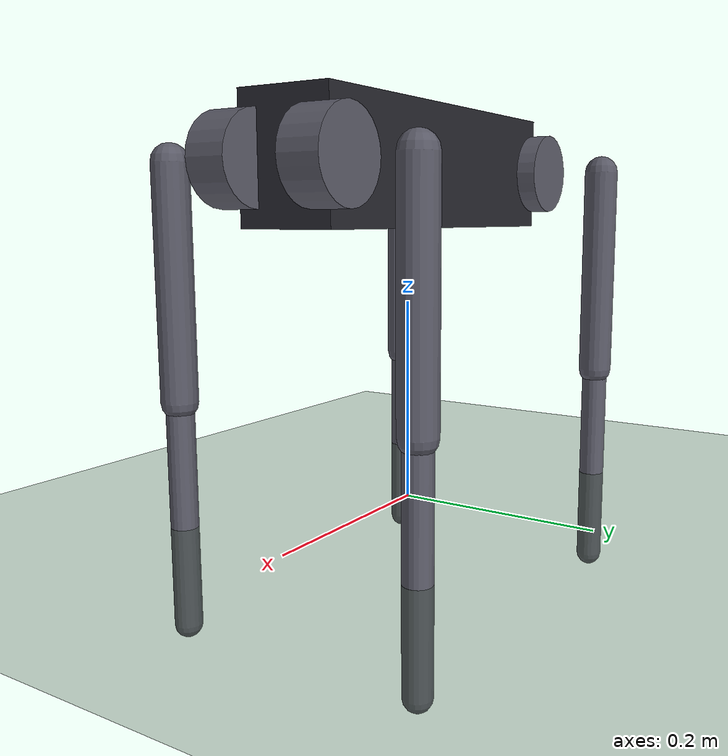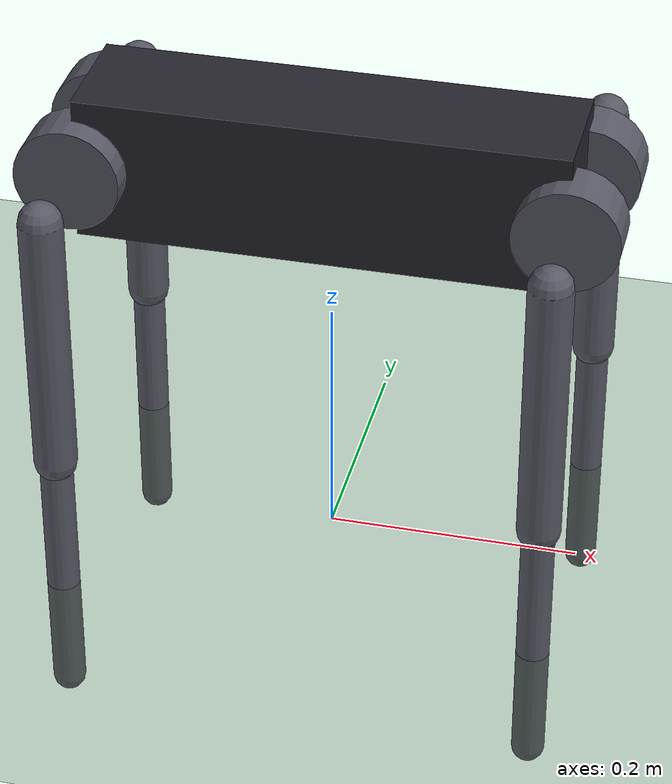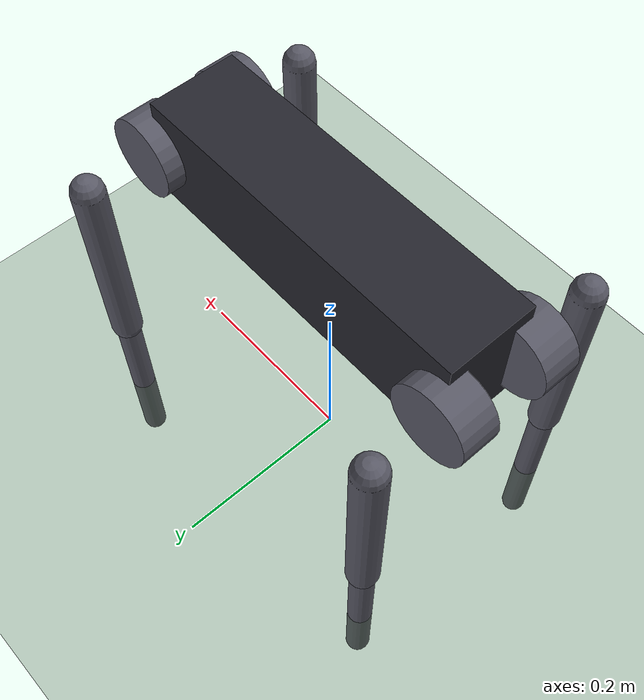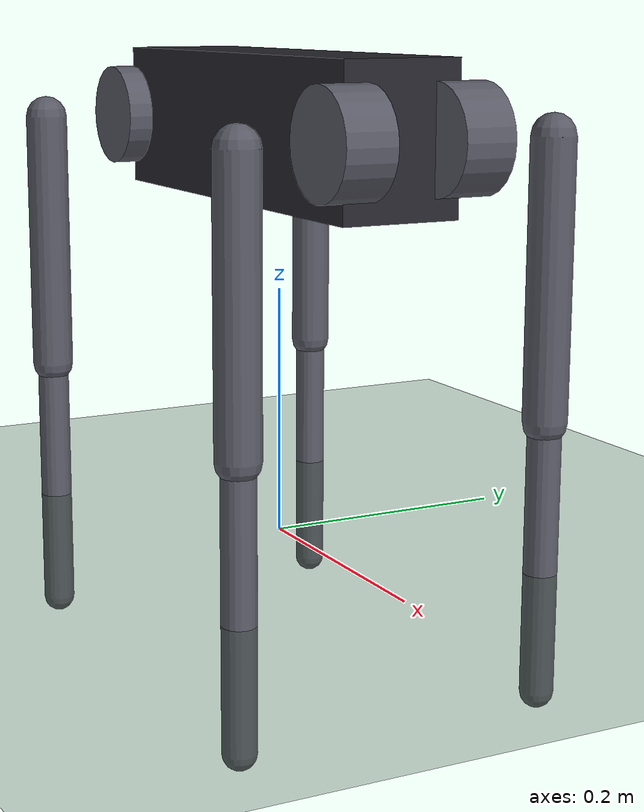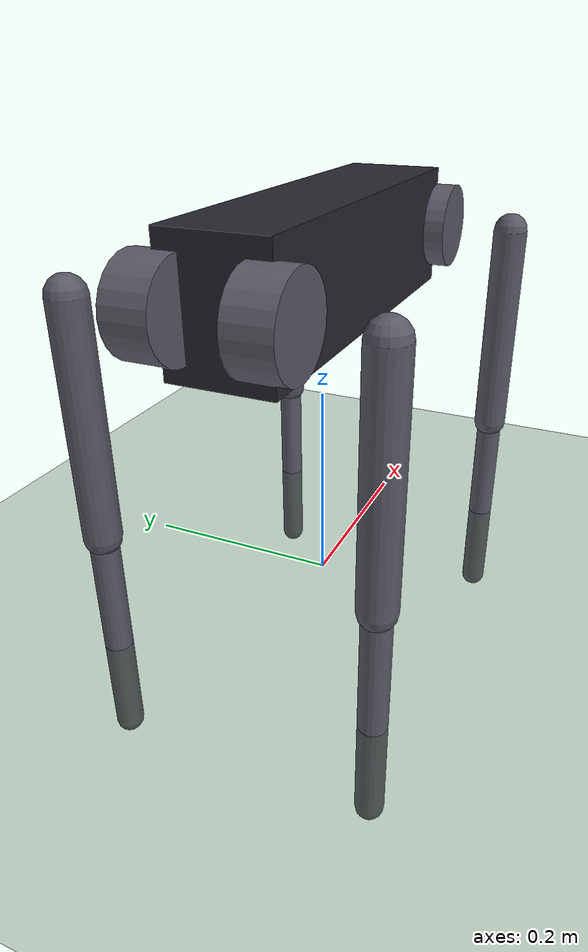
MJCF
<mujoco model="go1_flat">
  <compiler angle="radian" autolimits="true"/>
  <option timestep="0.002" iterations="50" solver="Newton" gravity="0 0 -9.81"/>

  <default>
    <default class="go1">
      <geom contype="1" conaffinity="0" condim="3" friction="0.8 0.02 0.01" solref="0.005 1"/>
      <joint damping="0.3" armature="0.01" frictionloss="0.1"/>
      <motor ctrllimited="true"/>
      <default class="hip">
        <joint axis="1 0 0" range="-0.803 0.803"/>
        <motor ctrlrange="-23.7 23.7"/>
      </default>
      <default class="thigh">
        <joint axis="0 1 0" range="-1.047 3.49"/>
        <motor ctrlrange="-23.7 23.7"/>
      </default>
      <default class="calf">
        <joint axis="0 1 0" range="-2.696 -0.916"/>
        <motor ctrlrange="-35.55 35.55"/>
      </default>
      <default class="visual">
        <geom contype="0" conaffinity="0" group="2"/>
      </default>
      <default class="collision">
        <geom group="3"/>
      </default>
    </default>
  </default>

  <visual>
    <headlight ambient="0.3 0.3 0.3"/>
    <global offwidth="1280" offheight="720"/>
  </visual>

  <asset>
    <texture type="skybox" builtin="gradient" rgb1="0.5 0.7 0.9" rgb2="0.1 0.1 0.2" width="256" height="256"/>
    <texture name="grid" type="2d" builtin="checker" rgb1="0.2 0.3 0.2" rgb2="0.25 0.35 0.25" width="512" height="512"/>
    <material name="grid_mat" texture="grid" texrepeat="12 12" reflectance="0.1"/>
    <material name="body_mat" rgba="0.15 0.15 0.18 1"/>
    <material name="leg_mat" rgba="0.35 0.35 0.4 1"/>
  </asset>

  <worldbody>
    <!-- FLAT TERRAIN: single ground plane. Later terrain stages replace/extend this. -->
    <geom name="floor" type="plane" size="20 20 0.1" material="grid_mat" friction="0.9 0.02 0.01" condim="3"/>
    <light name="sun" pos="0 0 4" dir="0 0 -1" directional="true" diffuse="0.8 0.8 0.8"/>

    <body name="trunk" pos="0 0 0.33" childclass="go1">
      <freejoint name="root"/>
      <inertial pos="0 0 0" mass="5.204" diaginertia="0.0168 0.0565 0.0645"/>
      <geom class="visual" type="box" size="0.1881 0.0467 0.057" material="body_mat"/>
      <geom class="collision" type="box" size="0.1881 0.0467 0.057"/>
      <site name="imu" pos="0 0 0" size="0.01"/>
      <!-- Chase camera: follows the trunk's center of mass so recordings/viewer
           don't lose the robot as it walks forward. Side-on view, slightly elevated. -->
      <camera name="track" mode="trackcom" pos="0 -2.2 0.7" xyaxes="1 0 0 0 0.35 1"/>
      <camera name="chase_rear" mode="trackcom" pos="-1.8 0 0.5" xyaxes="0 -1 0 0 0 1"/>
      <!-- Top-down: best for footfall/stride-pattern timing (which feet touch when). -->
      <camera name="topdown" mode="trackcom" pos="0 0 3.0" xyaxes="1 0 0 0 1 0"/>

      <!-- ===================== FRONT RIGHT (FR) ===================== -->
      <body name="FR_hip" pos="0.1881 -0.04675 0">
        <joint name="FR_hip_joint" class="hip"/>
        <inertial pos="0 -0.02 0" mass="0.696" diaginertia="0.00025 0.00034 0.00023"/>
        <geom class="visual" type="cylinder" size="0.041 0.02" quat="0.707 0.707 0 0" material="leg_mat"/>
        <body name="FR_thigh" pos="0 -0.08 0">
          <joint name="FR_thigh_joint" class="thigh"/>
          <inertial pos="0 0 -0.1065" mass="1.013" diaginertia="0.006 0.006 0.0007"/>
          <geom class="visual" type="capsule" fromto="0 0 0 0 0 -0.213" size="0.017" material="leg_mat"/>
          <geom class="collision" type="capsule" fromto="0 0 0 0 0 -0.213" size="0.017"/>
          <body name="FR_calf" pos="0 0 -0.213">
            <joint name="FR_calf_joint" class="calf"/>
            <inertial pos="0 0 -0.1065" mass="0.166" diaginertia="0.0006 0.0006 0.00003"/>
            <geom class="visual" type="capsule" fromto="0 0 0 0 0 -0.213" size="0.013" material="leg_mat"/>
            <geom class="collision" type="capsule" fromto="0 0 0 0 0 -0.213" size="0.013"/>
            <geom name="FR_foot" class="collision" type="sphere" pos="0 0 -0.213" size="0.022" friction="1.0 0.02 0.01" priority="1"/>
            <site name="FR_foot_site" pos="0 0 -0.213" size="0.01"/>
          </body>
        </body>
      </body>

      <!-- ===================== FRONT LEFT (FL) ===================== -->
      <body name="FL_hip" pos="0.1881 0.04675 0">
        <joint name="FL_hip_joint" class="hip"/>
        <inertial pos="0 0.02 0" mass="0.696" diaginertia="0.00025 0.00034 0.00023"/>
        <geom class="visual" type="cylinder" size="0.041 0.02" quat="0.707 0.707 0 0" material="leg_mat"/>
        <body name="FL_thigh" pos="0 0.08 0">
          <joint name="FL_thigh_joint" class="thigh"/>
          <inertial pos="0 0 -0.1065" mass="1.013" diaginertia="0.006 0.006 0.0007"/>
          <geom class="visual" type="capsule" fromto="0 0 0 0 0 -0.213" size="0.017" material="leg_mat"/>
          <geom class="collision" type="capsule" fromto="0 0 0 0 0 -0.213" size="0.017"/>
          <body name="FL_calf" pos="0 0 -0.213">
            <joint name="FL_calf_joint" class="calf"/>
            <inertial pos="0 0 -0.1065" mass="0.166" diaginertia="0.0006 0.0006 0.00003"/>
            <geom class="visual" type="capsule" fromto="0 0 0 0 0 -0.213" size="0.013" material="leg_mat"/>
            <geom class="collision" type="capsule" fromto="0 0 0 0 0 -0.213" size="0.013"/>
            <geom name="FL_foot" class="collision" type="sphere" pos="0 0 -0.213" size="0.022" friction="1.0 0.02 0.01" priority="1"/>
            <site name="FL_foot_site" pos="0 0 -0.213" size="0.01"/>
          </body>
        </body>
      </body>

      <!-- ===================== REAR RIGHT (RR) ===================== -->
      <body name="RR_hip" pos="-0.1881 -0.04675 0">
        <joint name="RR_hip_joint" class="hip"/>
        <inertial pos="0 -0.02 0" mass="0.696" diaginertia="0.00025 0.00034 0.00023"/>
        <geom class="visual" type="cylinder" size="0.041 0.02" quat="0.707 0.707 0 0" material="leg_mat"/>
        <body name="RR_thigh" pos="0 -0.08 0">
          <joint name="RR_thigh_joint" class="thigh"/>
          <inertial pos="0 0 -0.1065" mass="1.013" diaginertia="0.006 0.006 0.0007"/>
          <geom class="visual" type="capsule" fromto="0 0 0 0 0 -0.213" size="0.017" material="leg_mat"/>
          <geom class="collision" type="capsule" fromto="0 0 0 0 0 -0.213" size="0.017"/>
          <body name="RR_calf" pos="0 0 -0.213">
            <joint name="RR_calf_joint" class="calf"/>
            <inertial pos="0 0 -0.1065" mass="0.166" diaginertia="0.0006 0.0006 0.00003"/>
            <geom class="visual" type="capsule" fromto="0 0 0 0 0 -0.213" size="0.013" material="leg_mat"/>
            <geom class="collision" type="capsule" fromto="0 0 0 0 0 -0.213" size="0.013"/>
            <geom name="RR_foot" class="collision" type="sphere" pos="0 0 -0.213" size="0.022" friction="1.0 0.02 0.01" priority="1"/>
            <site name="RR_foot_site" pos="0 0 -0.213" size="0.01"/>
          </body>
        </body>
      </body>

      <!-- ===================== REAR LEFT (RL) ===================== -->
      <body name="RL_hip" pos="-0.1881 0.04675 0">
        <joint name="RL_hip_joint" class="hip"/>
        <inertial pos="0 0.02 0" mass="0.696" diaginertia="0.00025 0.00034 0.00023"/>
        <geom class="visual" type="cylinder" size="0.041 0.02" quat="0.707 0.707 0 0" material="leg_mat"/>
        <body name="RL_thigh" pos="0 0.08 0">
          <joint name="RL_thigh_joint" class="thigh"/>
          <inertial pos="0 0 -0.1065" mass="1.013" diaginertia="0.006 0.006 0.0007"/>
          <geom class="visual" type="capsule" fromto="0 0 0 0 0 -0.213" size="0.017" material="leg_mat"/>
          <geom class="collision" type="capsule" fromto="0 0 0 0 0 -0.213" size="0.017"/>
          <body name="RL_calf" pos="0 0 -0.213">
            <joint name="RL_calf_joint" class="calf"/>
            <inertial pos="0 0 -0.1065" mass="0.166" diaginertia="0.0006 0.0006 0.00003"/>
            <geom class="visual" type="capsule" fromto="0 0 0 0 0 -0.213" size="0.013" material="leg_mat"/>
            <geom class="collision" type="capsule" fromto="0 0 0 0 0 -0.213" size="0.013"/>
            <geom name="RL_foot" class="collision" type="sphere" pos="0 0 -0.213" size="0.022" friction="1.0 0.02 0.01" priority="1"/>
            <site name="RL_foot_site" pos="0 0 -0.213" size="0.01"/>
          </body>
        </body>
      </body>
    </body>
  </worldbody>

  <actuator>
    <motor name="FR_hip"   joint="FR_hip_joint"   class="hip"/>
    <motor name="FR_thigh" joint="FR_thigh_joint" class="thigh"/>
    <motor name="FR_calf"  joint="FR_calf_joint"  class="calf"/>
    <motor name="FL_hip"   joint="FL_hip_joint"   class="hip"/>
    <motor name="FL_thigh" joint="FL_thigh_joint" class="thigh"/>
    <motor name="FL_calf"  joint="FL_calf_joint"  class="calf"/>
    <motor name="RR_hip"   joint="RR_hip_joint"   class="hip"/>
    <motor name="RR_thigh" joint="RR_thigh_joint" class="thigh"/>
    <motor name="RR_calf"  joint="RR_calf_joint"  class="calf"/>
    <motor name="RL_hip"   joint="RL_hip_joint"   class="hip"/>
    <motor name="RL_thigh" joint="RL_thigh_joint" class="thigh"/>
    <motor name="RL_calf"  joint="RL_calf_joint"  class="calf"/>
  </actuator>

  <sensor>
    <framequat name="orientation" objtype="site" objname="imu"/>
    <gyro name="angular_velocity" site="imu"/>
    <accelerometer name="linear_acceleration" site="imu"/>
    <framepos name="trunk_pos" objtype="site" objname="imu"/>
    <framelinvel name="trunk_linvel" objtype="site" objname="imu"/>
    <touch name="FR_touch" site="FR_foot_site"/>
    <touch name="FL_touch" site="FL_foot_site"/>
    <touch name="RR_touch" site="RR_foot_site"/>
    <touch name="RL_touch" site="RL_foot_site"/>
  </sensor>

  <keyframe>
    <!-- Standing pose: hip=0, thigh~0.9, calf~-1.8 per leg -->
    <key name="stand"
      qpos="0 0 0.35 1 0 0 0
            0 0.6 -1.2
            0 0.6 -1.2
            0 0.6 -1.2
            0 0.6 -1.2"/>
  </keyframe>
</mujoco>
